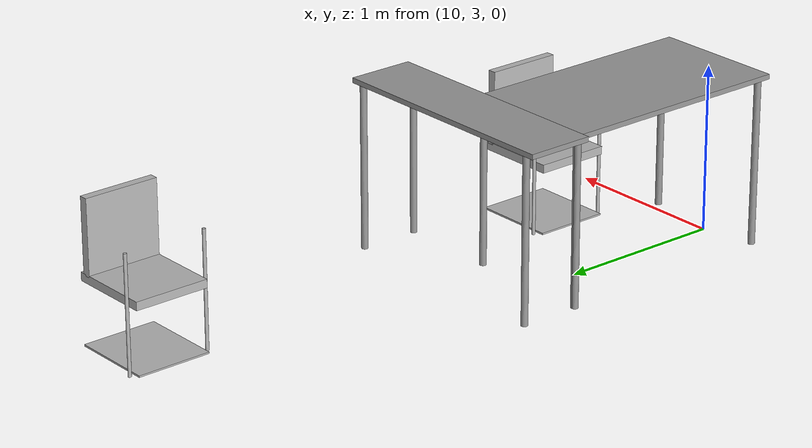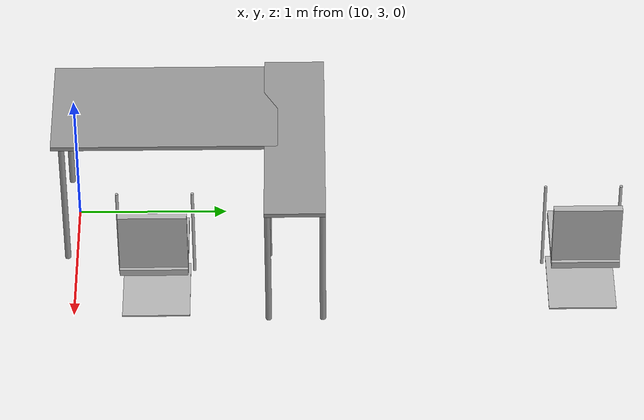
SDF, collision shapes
<sdf version="1.6">
 <model name="erica">
  <model name="h_chair">
   <link name="link_0">
    <inertial>
     <mass>1</mass>
     <inertia>
      <ixx>0.166667</ixx>
      <ixy>0</ixy>
      <ixz>0</ixz>
      <iyy>0.166667</iyy>
      <iyz>0</iyz>
      <izz>0.166667</izz>
     </inertia>
    </inertial>
    <visual name="visual">
     <geometry>
      <mesh><uri>model://erica/elements/h_chair/meshes/chair.dae</uri><scale>1 1 1</scale></mesh>
     </geometry>
    </visual>
    <collision name="collision_4">
     <pose>0 0 0.41 0 -0 0</pose>
     <geometry><box><size>0.5 0.45 0.05</size></box></geometry>
     <surface>
      <friction>
       <ode><mu>1</mu><mu2>1</mu2><fdir1>0 0 0</fdir1><slip1>0</slip1><slip2>0</slip2></ode>
       <torsional>
        <coefficient>1</coefficient>
        <patch_radius>0</patch_radius>
        <surface_radius>0</surface_radius>
        <use_patch_radius>1</use_patch_radius>
        <ode><slip>0</slip></ode>
       </torsional>
      </friction>
      <bounce><restitution_coefficient>0</restitution_coefficient><threshold>1e+06</threshold></bounce>
      <contact>
       <collide_without_contact>0</collide_without_contact>
       <collide_without_contact_bitmask>1</collide_without_contact_bitmask>
       <collide_bitmask>1</collide_bitmask>
       <ode>
        <soft_cfm>0</soft_cfm>
        <soft_erp>0.2</soft_erp>
        <kp>1e+13</kp>
        <kd>1</kd>
        <max_vel>0.01</max_vel>
        <min_depth>0</min_depth>
       </ode>
       <bullet>
        <split_impulse>1</split_impulse>
        <split_impulse_penetration_threshold>-0.01</split_impulse_penetration_threshold>
        <soft_cfm>0</soft_cfm>
        <soft_erp>0.2</soft_erp>
        <kp>1e+13</kp>
        <kd>1</kd>
       </bullet>
      </contact>
     </surface>
    </collision>
    <collision name="collision_3">
     <pose>0 0 0.01 0 -0 0</pose>
     <geometry><box><size>0.5 0.45 0.01</size></box></geometry>
     <surface>
      <friction>
       <ode><mu>1</mu><mu2>1</mu2><fdir1>0 0 0</fdir1><slip1>0</slip1><slip2>0</slip2></ode>
       <torsional>
        <coefficient>1</coefficient>
        <patch_radius>0</patch_radius>
        <surface_radius>0</surface_radius>
        <use_patch_radius>1</use_patch_radius>
        <ode><slip>0</slip></ode>
       </torsional>
      </friction>
      <bounce><restitution_coefficient>0</restitution_coefficient><threshold>1e+06</threshold></bounce>
      <contact>
       <collide_without_contact>0</collide_without_contact>
       <collide_without_contact_bitmask>1</collide_without_contact_bitmask>
       <collide_bitmask>1</collide_bitmask>
       <ode>
        <soft_cfm>0</soft_cfm>
        <soft_erp>0.2</soft_erp>
        <kp>1e+13</kp>
        <kd>1</kd>
        <max_vel>0.01</max_vel>
        <min_depth>0</min_depth>
       </ode>
       <bullet>
        <split_impulse>1</split_impulse>
        <split_impulse_penetration_threshold>-0.01</split_impulse_penetration_threshold>
        <soft_cfm>0</soft_cfm>
        <soft_erp>0.2</soft_erp>
        <kp>1e+13</kp>
        <kd>1</kd>
       </bullet>
      </contact>
     </surface>
    </collision>
    <collision name="collision_5">
     <pose>-0.2 0 0.65 0 -0 0</pose>
     <geometry><box><size>0.05 0.45 0.45</size></box></geometry>
     <surface>
      <friction>
       <ode><mu>1</mu><mu2>1</mu2><fdir1>0 0 0</fdir1><slip1>0</slip1><slip2>0</slip2></ode>
       <torsional>
        <coefficient>1</coefficient>
        <patch_radius>0</patch_radius>
        <surface_radius>0</surface_radius>
        <use_patch_radius>1</use_patch_radius>
        <ode><slip>0</slip></ode>
       </torsional>
      </friction>
      <bounce><restitution_coefficient>0</restitution_coefficient><threshold>1e+06</threshold></bounce>
      <contact>
       <collide_without_contact>0</collide_without_contact>
       <collide_without_contact_bitmask>1</collide_without_contact_bitmask>
       <collide_bitmask>1</collide_bitmask>
       <ode>
        <soft_cfm>0</soft_cfm>
        <soft_erp>0.2</soft_erp>
        <kp>1e+13</kp>
        <kd>1</kd>
        <max_vel>0.01</max_vel>
        <min_depth>0</min_depth>
       </ode>
       <bullet>
        <split_impulse>1</split_impulse>
        <split_impulse_penetration_threshold>-0.01</split_impulse_penetration_threshold>
        <soft_cfm>0</soft_cfm>
        <soft_erp>0.2</soft_erp>
        <kp>1e+13</kp>
        <kd>1</kd>
       </bullet>
      </contact>
     </surface>
    </collision>
    <collision name="collision_6">
     <pose>0.2 -0.25 0.35 0 -0 0</pose>
     <geometry><cylinder><radius>0.01</radius><length>0.7</length></cylinder></geometry>
     <surface>
      <friction>
       <ode><mu>1</mu><mu2>1</mu2><fdir1>0 0 0</fdir1><slip1>0</slip1><slip2>0</slip2></ode>
       <torsional>
        <coefficient>1</coefficient>
        <patch_radius>0</patch_radius>
        <surface_radius>0</surface_radius>
        <use_patch_radius>1</use_patch_radius>
        <ode><slip>0</slip></ode>
       </torsional>
      </friction>
      <bounce><restitution_coefficient>0</restitution_coefficient><threshold>1e+06</threshold></bounce>
      <contact>
       <collide_without_contact>0</collide_without_contact>
       <collide_without_contact_bitmask>1</collide_without_contact_bitmask>
       <collide_bitmask>1</collide_bitmask>
       <ode>
        <soft_cfm>0</soft_cfm>
        <soft_erp>0.2</soft_erp>
        <kp>1e+13</kp>
        <kd>1</kd>
        <max_vel>0.01</max_vel>
        <min_depth>0</min_depth>
       </ode>
       <bullet>
        <split_impulse>1</split_impulse>
        <split_impulse_penetration_threshold>-0.01</split_impulse_penetration_threshold>
        <soft_cfm>0</soft_cfm>
        <soft_erp>0.2</soft_erp>
        <kp>1e+13</kp>
        <kd>1</kd>
       </bullet>
      </contact>
     </surface>
    </collision>
    <collision name="collision_7">
     <pose>0.2 0.25 0.35 0 -0 0</pose>
     <geometry><cylinder><radius>0.01</radius><length>0.7</length></cylinder></geometry>
     <surface>
      <friction>
       <ode><mu>1</mu><mu2>1</mu2><fdir1>0 0 0</fdir1><slip1>0</slip1><slip2>0</slip2></ode>
       <torsional>
        <coefficient>1</coefficient>
        <patch_radius>0</patch_radius>
        <surface_radius>0</surface_radius>
        <use_patch_radius>1</use_patch_radius>
        <ode><slip>0</slip></ode>
       </torsional>
      </friction>
      <bounce><restitution_coefficient>0</restitution_coefficient><threshold>1e+06</threshold></bounce>
      <contact>
       <collide_without_contact>0</collide_without_contact>
       <collide_without_contact_bitmask>1</collide_without_contact_bitmask>
       <collide_bitmask>1</collide_bitmask>
       <ode>
        <soft_cfm>0</soft_cfm>
        <soft_erp>0.2</soft_erp>
        <kp>1e+13</kp>
        <kd>1</kd>
        <max_vel>0.01</max_vel>
        <min_depth>0</min_depth>
       </ode>
       <bullet>
        <split_impulse>1</split_impulse>
        <split_impulse_penetration_threshold>-0.01</split_impulse_penetration_threshold>
        <soft_cfm>0</soft_cfm>
        <soft_erp>0.2</soft_erp>
        <kp>1e+13</kp>
        <kd>1</kd>
       </bullet>
      </contact>
     </surface>
    </collision>
   </link>
   <static>1</static>
   <pose>10.725 6.38975 0 0 0 -3.13847</pose>
  </model>
  <model name="h_chair_clone">
   <link name="link_0">
    <inertial>
     <mass>1</mass>
     <inertia>
      <ixx>0.166667</ixx>
      <ixy>0</ixy>
      <ixz>0</ixz>
      <iyy>0.166667</iyy>
      <iyz>0</iyz>
      <izz>0.166667</izz>
     </inertia>
    </inertial>
    <visual name="visual">
     <geometry>
      <mesh><uri>model://erica/elements/h_chair/meshes/chair.dae</uri><scale>1 1 1</scale></mesh>
     </geometry>
    </visual>
    <collision name="collision_4">
     <pose>0 0 0.41 0 -0 0</pose>
     <geometry><box><size>0.5 0.45 0.05</size></box></geometry>
     <surface>
      <friction>
       <ode><mu>1</mu><mu2>1</mu2><fdir1>0 0 0</fdir1><slip1>0</slip1><slip2>0</slip2></ode>
       <torsional>
        <coefficient>1</coefficient>
        <patch_radius>0</patch_radius>
        <surface_radius>0</surface_radius>
        <use_patch_radius>1</use_patch_radius>
        <ode><slip>0</slip></ode>
       </torsional>
      </friction>
      <bounce><restitution_coefficient>0</restitution_coefficient><threshold>1e+06</threshold></bounce>
      <contact>
       <collide_without_contact>0</collide_without_contact>
       <collide_without_contact_bitmask>1</collide_without_contact_bitmask>
       <collide_bitmask>1</collide_bitmask>
       <ode>
        <soft_cfm>0</soft_cfm>
        <soft_erp>0.2</soft_erp>
        <kp>1e+13</kp>
        <kd>1</kd>
        <max_vel>0.01</max_vel>
        <min_depth>0</min_depth>
       </ode>
       <bullet>
        <split_impulse>1</split_impulse>
        <split_impulse_penetration_threshold>-0.01</split_impulse_penetration_threshold>
        <soft_cfm>0</soft_cfm>
        <soft_erp>0.2</soft_erp>
        <kp>1e+13</kp>
        <kd>1</kd>
       </bullet>
      </contact>
     </surface>
    </collision>
    <collision name="collision_3">
     <pose>0 0 0.01 0 -0 0</pose>
     <geometry><box><size>0.5 0.45 0.01</size></box></geometry>
     <surface>
      <friction>
       <ode><mu>1</mu><mu2>1</mu2><fdir1>0 0 0</fdir1><slip1>0</slip1><slip2>0</slip2></ode>
       <torsional>
        <coefficient>1</coefficient>
        <patch_radius>0</patch_radius>
        <surface_radius>0</surface_radius>
        <use_patch_radius>1</use_patch_radius>
        <ode><slip>0</slip></ode>
       </torsional>
      </friction>
      <bounce><restitution_coefficient>0</restitution_coefficient><threshold>1e+06</threshold></bounce>
      <contact>
       <collide_without_contact>0</collide_without_contact>
       <collide_without_contact_bitmask>1</collide_without_contact_bitmask>
       <collide_bitmask>1</collide_bitmask>
       <ode>
        <soft_cfm>0</soft_cfm>
        <soft_erp>0.2</soft_erp>
        <kp>1e+13</kp>
        <kd>1</kd>
        <max_vel>0.01</max_vel>
        <min_depth>0</min_depth>
       </ode>
       <bullet>
        <split_impulse>1</split_impulse>
        <split_impulse_penetration_threshold>-0.01</split_impulse_penetration_threshold>
        <soft_cfm>0</soft_cfm>
        <soft_erp>0.2</soft_erp>
        <kp>1e+13</kp>
        <kd>1</kd>
       </bullet>
      </contact>
     </surface>
    </collision>
    <collision name="collision_5">
     <pose>-0.2 0 0.65 0 -0 0</pose>
     <geometry><box><size>0.05 0.45 0.45</size></box></geometry>
     <surface>
      <friction>
       <ode><mu>1</mu><mu2>1</mu2><fdir1>0 0 0</fdir1><slip1>0</slip1><slip2>0</slip2></ode>
       <torsional>
        <coefficient>1</coefficient>
        <patch_radius>0</patch_radius>
        <surface_radius>0</surface_radius>
        <use_patch_radius>1</use_patch_radius>
        <ode><slip>0</slip></ode>
       </torsional>
      </friction>
      <bounce><restitution_coefficient>0</restitution_coefficient><threshold>1e+06</threshold></bounce>
      <contact>
       <collide_without_contact>0</collide_without_contact>
       <collide_without_contact_bitmask>1</collide_without_contact_bitmask>
       <collide_bitmask>1</collide_bitmask>
       <ode>
        <soft_cfm>0</soft_cfm>
        <soft_erp>0.2</soft_erp>
        <kp>1e+13</kp>
        <kd>1</kd>
        <max_vel>0.01</max_vel>
        <min_depth>0</min_depth>
       </ode>
       <bullet>
        <split_impulse>1</split_impulse>
        <split_impulse_penetration_threshold>-0.01</split_impulse_penetration_threshold>
        <soft_cfm>0</soft_cfm>
        <soft_erp>0.2</soft_erp>
        <kp>1e+13</kp>
        <kd>1</kd>
       </bullet>
      </contact>
     </surface>
    </collision>
    <collision name="collision_6">
     <pose>0.2 -0.25 0.35 0 -0 0</pose>
     <geometry><cylinder><radius>0.01</radius><length>0.7</length></cylinder></geometry>
     <surface>
      <friction>
       <ode><mu>1</mu><mu2>1</mu2><fdir1>0 0 0</fdir1><slip1>0</slip1><slip2>0</slip2></ode>
       <torsional>
        <coefficient>1</coefficient>
        <patch_radius>0</patch_radius>
        <surface_radius>0</surface_radius>
        <use_patch_radius>1</use_patch_radius>
        <ode><slip>0</slip></ode>
       </torsional>
      </friction>
      <bounce><restitution_coefficient>0</restitution_coefficient><threshold>1e+06</threshold></bounce>
      <contact>
       <collide_without_contact>0</collide_without_contact>
       <collide_without_contact_bitmask>1</collide_without_contact_bitmask>
       <collide_bitmask>1</collide_bitmask>
       <ode>
        <soft_cfm>0</soft_cfm>
        <soft_erp>0.2</soft_erp>
        <kp>1e+13</kp>
        <kd>1</kd>
        <max_vel>0.01</max_vel>
        <min_depth>0</min_depth>
       </ode>
       <bullet>
        <split_impulse>1</split_impulse>
        <split_impulse_penetration_threshold>-0.01</split_impulse_penetration_threshold>
        <soft_cfm>0</soft_cfm>
        <soft_erp>0.2</soft_erp>
        <kp>1e+13</kp>
        <kd>1</kd>
       </bullet>
      </contact>
     </surface>
    </collision>
    <collision name="collision_7">
     <pose>0.2 0.25 0.35 0 -0 0</pose>
     <geometry><cylinder><radius>0.01</radius><length>0.7</length></cylinder></geometry>
     <surface>
      <friction>
       <ode><mu>1</mu><mu2>1</mu2><fdir1>0 0 0</fdir1><slip1>0</slip1><slip2>0</slip2></ode>
       <torsional>
        <coefficient>1</coefficient>
        <patch_radius>0</patch_radius>
        <surface_radius>0</surface_radius>
        <use_patch_radius>1</use_patch_radius>
        <ode><slip>0</slip></ode>
       </torsional>
      </friction>
      <bounce><restitution_coefficient>0</restitution_coefficient><threshold>1e+06</threshold></bounce>
      <contact>
       <collide_without_contact>0</collide_without_contact>
       <collide_without_contact_bitmask>1</collide_without_contact_bitmask>
       <collide_bitmask>1</collide_bitmask>
       <ode>
        <soft_cfm>0</soft_cfm>
        <soft_erp>0.2</soft_erp>
        <kp>1e+13</kp>
        <kd>1</kd>
        <max_vel>0.01</max_vel>
        <min_depth>0</min_depth>
       </ode>
       <bullet>
        <split_impulse>1</split_impulse>
        <split_impulse_penetration_threshold>-0.01</split_impulse_penetration_threshold>
        <soft_cfm>0</soft_cfm>
        <soft_erp>0.2</soft_erp>
        <kp>1e+13</kp>
        <kd>1</kd>
       </bullet>
      </contact>
     </surface>
    </collision>
   </link>
   <static>1</static>
   <pose>10.7735 3.54523 0 0 0 -3.13847</pose>
  </model>
  <model name="h_table3">
   <link name="link">
    <inertial>
     <inertia><ixx>1</ixx><ixy>0</ixy><ixz>0</ixz><iyy>1</iyy><iyz>0</iyz><izz>1</izz></inertia>
     <mass>1</mass>
    </inertial>
    <visual name="front_left_leg">
     <pose>0.68 0.38 0.5 0 -0 0</pose>
     <geometry><cylinder><radius>0.02</radius><length>1</length></cylinder></geometry>
     <material>
      <script><uri>file://media/materials/scripts/gazebo.material</uri><name>Gazebo/Grey</name></script>
      <ambient>0.3 0.3 0.3 1</ambient>
      <diffuse>0.7 0.7 0.7 1</diffuse>
      <specular>0.01 0.01 0.01 1</specular>
      <emissive>0 0 0 1</emissive>
     </material>
    </visual>
    <visual name="visual1">
     <pose>0 0 1 0 -0 0</pose>
     <geometry><box><size>1.4 0.8 0.04</size></box></geometry>
     <material>
      <script><uri>file://media/materials/scripts/gazebo.material</uri><name>Gazebo/Wood</name></script>
      <ambient>1 1 1 1</ambient>
      <diffuse>1 1 1 1</diffuse>
      <specular>0.2 0.2 0.2 1</specular>
      <emissive>0 0 0 1</emissive>
     </material>
    </visual>
    <visual name="back_left_leg">
     <pose>-0.68 0.38 0.5 0 -0 0</pose>
     <geometry><cylinder><radius>0.02</radius><length>1</length></cylinder></geometry>
     <material>
      <script><uri>file://media/materials/scripts/gazebo.material</uri><name>Gazebo/Grey</name></script>
      <ambient>0.3 0.3 0.3 1</ambient>
      <diffuse>0.7 0.7 0.7 1</diffuse>
      <specular>0.01 0.01 0.01 1</specular>
      <emissive>0 0 0 1</emissive>
     </material>
    </visual>
    <visual name="back_right_leg">
     <pose>-0.68 -0.38 0.5 0 -0 0</pose>
     <geometry><cylinder><radius>0.02</radius><length>1</length></cylinder></geometry>
     <material>
      <script><uri>file://media/materials/scripts/gazebo.material</uri><name>Gazebo/Grey</name></script>
      <ambient>0.3 0.3 0.3 1</ambient>
      <diffuse>0.7 0.7 0.7 1</diffuse>
      <specular>0.01 0.01 0.01 1</specular>
      <emissive>0 0 0 1</emissive>
     </material>
    </visual>
    <visual name="front_right_leg">
     <pose>0.68 -0.38 0.5 0 -0 0</pose>
     <geometry><cylinder><radius>0.02</radius><length>1</length></cylinder></geometry>
     <material>
      <script><uri>file://media/materials/scripts/gazebo.material</uri><name>Gazebo/Grey</name></script>
      <ambient>0.3 0.3 0.3 1</ambient>
      <diffuse>0.7 0.7 0.7 1</diffuse>
      <specular>0.01 0.01 0.01 1</specular>
      <emissive>0 0 0 1</emissive>
     </material>
    </visual>
    <collision name="front_left_leg">
     <pose>0.68 0.38 0.5 0 -0 0</pose>
     <geometry><cylinder><radius>0.02</radius><length>1</length></cylinder></geometry>
     <surface>
      <friction>
       <ode><mu>1</mu><mu2>1</mu2><fdir1>0 0 0</fdir1><slip1>0</slip1><slip2>0</slip2></ode>
       <torsional>
        <coefficient>1</coefficient>
        <patch_radius>0</patch_radius>
        <surface_radius>0</surface_radius>
        <use_patch_radius>1</use_patch_radius>
        <ode><slip>0</slip></ode>
       </torsional>
      </friction>
      <bounce><restitution_coefficient>0</restitution_coefficient><threshold>1e+06</threshold></bounce>
      <contact>
       <collide_without_contact>0</collide_without_contact>
       <collide_without_contact_bitmask>1</collide_without_contact_bitmask>
       <collide_bitmask>1</collide_bitmask>
       <ode>
        <soft_cfm>0</soft_cfm>
        <soft_erp>0.2</soft_erp>
        <kp>1e+13</kp>
        <kd>1</kd>
        <max_vel>0.01</max_vel>
        <min_depth>0</min_depth>
       </ode>
       <bullet>
        <split_impulse>1</split_impulse>
        <split_impulse_penetration_threshold>-0.01</split_impulse_penetration_threshold>
        <soft_cfm>0</soft_cfm>
        <soft_erp>0.2</soft_erp>
        <kp>1e+13</kp>
        <kd>1</kd>
       </bullet>
      </contact>
     </surface>
    </collision>
    <collision name="front_right_leg">
     <pose>0.68 -0.38 0.5 0 -0 0</pose>
     <geometry><cylinder><radius>0.02</radius><length>1</length></cylinder></geometry>
     <surface>
      <friction>
       <ode><mu>1</mu><mu2>1</mu2><fdir1>0 0 0</fdir1><slip1>0</slip1><slip2>0</slip2></ode>
       <torsional>
        <coefficient>1</coefficient>
        <patch_radius>0</patch_radius>
        <surface_radius>0</surface_radius>
        <use_patch_radius>1</use_patch_radius>
        <ode><slip>0</slip></ode>
       </torsional>
      </friction>
      <bounce><restitution_coefficient>0</restitution_coefficient><threshold>1e+06</threshold></bounce>
      <contact>
       <collide_without_contact>0</collide_without_contact>
       <collide_without_contact_bitmask>1</collide_without_contact_bitmask>
       <collide_bitmask>1</collide_bitmask>
       <ode>
        <soft_cfm>0</soft_cfm>
        <soft_erp>0.2</soft_erp>
        <kp>1e+13</kp>
        <kd>1</kd>
        <max_vel>0.01</max_vel>
        <min_depth>0</min_depth>
       </ode>
       <bullet>
        <split_impulse>1</split_impulse>
        <split_impulse_penetration_threshold>-0.01</split_impulse_penetration_threshold>
        <soft_cfm>0</soft_cfm>
        <soft_erp>0.2</soft_erp>
        <kp>1e+13</kp>
        <kd>1</kd>
       </bullet>
      </contact>
     </surface>
    </collision>
    <collision name="surface">
     <pose>0 0 1 0 -0 0</pose>
     <geometry><box><size>1.5 0.8 0.03</size></box></geometry>
     <surface>
      <friction>
       <ode><mu>0.6</mu><mu2>0.6</mu2><fdir1>0 0 0</fdir1><slip1>0</slip1><slip2>0</slip2></ode>
       <torsional>
        <coefficient>1</coefficient>
        <patch_radius>0</patch_radius>
        <surface_radius>0</surface_radius>
        <use_patch_radius>1</use_patch_radius>
        <ode><slip>0</slip></ode>
       </torsional>
      </friction>
      <bounce><restitution_coefficient>0</restitution_coefficient><threshold>1e+06</threshold></bounce>
      <contact>
       <collide_without_contact>0</collide_without_contact>
       <collide_without_contact_bitmask>1</collide_without_contact_bitmask>
       <collide_bitmask>1</collide_bitmask>
       <ode>
        <soft_cfm>0</soft_cfm>
        <soft_erp>0.2</soft_erp>
        <kp>1e+13</kp>
        <kd>1</kd>
        <max_vel>0.01</max_vel>
        <min_depth>0</min_depth>
       </ode>
       <bullet>
        <split_impulse>1</split_impulse>
        <split_impulse_penetration_threshold>-0.01</split_impulse_penetration_threshold>
        <soft_cfm>0</soft_cfm>
        <soft_erp>0.2</soft_erp>
        <kp>1e+13</kp>
        <kd>1</kd>
       </bullet>
      </contact>
     </surface>
    </collision>
    <collision name="back_right_leg">
     <pose>-0.68 -0.38 0.5 0 -0 0</pose>
     <geometry><cylinder><radius>0.02</radius><length>1</length></cylinder></geometry>
     <surface>
      <friction>
       <ode><mu>1</mu><mu2>1</mu2><fdir1>0 0 0</fdir1><slip1>0</slip1><slip2>0</slip2></ode>
       <torsional>
        <coefficient>1</coefficient>
        <patch_radius>0</patch_radius>
        <surface_radius>0</surface_radius>
        <use_patch_radius>1</use_patch_radius>
        <ode><slip>0</slip></ode>
       </torsional>
      </friction>
      <bounce><restitution_coefficient>0</restitution_coefficient><threshold>1e+06</threshold></bounce>
      <contact>
       <collide_without_contact>0</collide_without_contact>
       <collide_without_contact_bitmask>1</collide_without_contact_bitmask>
       <collide_bitmask>1</collide_bitmask>
       <ode>
        <soft_cfm>0</soft_cfm>
        <soft_erp>0.2</soft_erp>
        <kp>1e+13</kp>
        <kd>1</kd>
        <max_vel>0.01</max_vel>
        <min_depth>0</min_depth>
       </ode>
       <bullet>
        <split_impulse>1</split_impulse>
        <split_impulse_penetration_threshold>-0.01</split_impulse_penetration_threshold>
        <soft_cfm>0</soft_cfm>
        <soft_erp>0.2</soft_erp>
        <kp>1e+13</kp>
        <kd>1</kd>
       </bullet>
      </contact>
     </surface>
    </collision>
    <collision name="back_left_leg">
     <pose>-0.68 0.38 0.5 0 -0 0</pose>
     <geometry><cylinder><radius>0.02</radius><length>1</length></cylinder></geometry>
     <surface>
      <friction>
       <ode><mu>1</mu><mu2>1</mu2><fdir1>0 0 0</fdir1><slip1>0</slip1><slip2>0</slip2></ode>
       <torsional>
        <coefficient>1</coefficient>
        <patch_radius>0</patch_radius>
        <surface_radius>0</surface_radius>
        <use_patch_radius>1</use_patch_radius>
        <ode><slip>0</slip></ode>
       </torsional>
      </friction>
      <bounce><restitution_coefficient>0</restitution_coefficient><threshold>1e+06</threshold></bounce>
      <contact>
       <collide_without_contact>0</collide_without_contact>
       <collide_without_contact_bitmask>1</collide_without_contact_bitmask>
       <collide_bitmask>1</collide_bitmask>
       <ode>
        <soft_cfm>0</soft_cfm>
        <soft_erp>0.2</soft_erp>
        <kp>1e+13</kp>
        <kd>1</kd>
        <max_vel>0.01</max_vel>
        <min_depth>0</min_depth>
       </ode>
       <bullet>
        <split_impulse>1</split_impulse>
        <split_impulse_penetration_threshold>-0.01</split_impulse_penetration_threshold>
        <soft_cfm>0</soft_cfm>
        <soft_erp>0.2</soft_erp>
        <kp>1e+13</kp>
        <kd>1</kd>
       </bullet>
      </contact>
     </surface>
    </collision>
   </link>
   <link name="link_clone">
    <pose>-0.859488 0.306544 0 0 -0 1.57</pose>
    <inertial>
     <inertia><ixx>1</ixx><ixy>0</ixy><ixz>0</ixz><iyy>1</iyy><iyz>0</iyz><izz>1</izz></inertia>
     <mass>1</mass>
    </inertial>
    <visual name="front_right_leg">
     <pose>0.68 -0.18 0.5 0 -0 0</pose>
     <geometry><cylinder><radius>0.02</radius><length>1</length></cylinder></geometry>
     <material>
      <script><uri>file://media/materials/scripts/gazebo.material</uri><name>Gazebo/Grey</name></script>
      <ambient>0.3 0.3 0.3 1</ambient>
      <diffuse>0.7 0.7 0.7 1</diffuse>
      <specular>0.01 0.01 0.01 1</specular>
      <emissive>0 0 0 1</emissive>
      <shader type="vertex"><normal_map>__default__</normal_map></shader>
     </material>
    </visual>
    <visual name="back_right_leg">
     <pose>-0.68 -0.18 0.5 0 -0 0</pose>
     <geometry><cylinder><radius>0.02</radius><length>1</length></cylinder></geometry>
     <material>
      <script><uri>file://media/materials/scripts/gazebo.material</uri><name>Gazebo/Grey</name></script>
      <ambient>0.3 0.3 0.3 1</ambient>
      <diffuse>0.7 0.7 0.7 1</diffuse>
      <specular>0.01 0.01 0.01 1</specular>
      <emissive>0 0 0 1</emissive>
      <shader type="vertex"><normal_map>__default__</normal_map></shader>
     </material>
    </visual>
    <visual name="visual1">
     <pose>0 0 1 0 -0 0</pose>
     <geometry><box><size>1.4 0.4 0.04</size></box></geometry>
     <material>
      <script><uri>file://media/materials/scripts/gazebo.material</uri><name>Gazebo/Wood</name></script>
      <ambient>1 1 1 1</ambient>
      <diffuse>1 1 1 1</diffuse>
      <specular>0.2 0.2 0.2 1</specular>
      <emissive>0 0 0 1</emissive>
      <shader type="vertex"><normal_map>__default__</normal_map></shader>
     </material>
    </visual>
    <visual name="front_left_leg">
     <pose>0.68 0.18 0.5 0 -0 0</pose>
     <geometry><cylinder><radius>0.02</radius><length>1</length></cylinder></geometry>
     <material>
      <script><uri>file://media/materials/scripts/gazebo.material</uri><name>Gazebo/Grey</name></script>
      <ambient>0.3 0.3 0.3 1</ambient>
      <diffuse>0.7 0.7 0.7 1</diffuse>
      <specular>0.01 0.01 0.01 1</specular>
      <emissive>0 0 0 1</emissive>
      <shader type="vertex"><normal_map>__default__</normal_map></shader>
     </material>
    </visual>
    <visual name="back_left_leg">
     <pose>-0.68 0.18 0.5 0 -0 0</pose>
     <geometry><cylinder><radius>0.02</radius><length>1</length></cylinder></geometry>
     <material>
      <script><uri>file://media/materials/scripts/gazebo.material</uri><name>Gazebo/Grey</name></script>
      <ambient>0.3 0.3 0.3 1</ambient>
      <diffuse>0.7 0.7 0.7 1</diffuse>
      <specular>0.01 0.01 0.01 1</specular>
      <emissive>0 0 0 1</emissive>
      <shader type="vertex"><normal_map>__default__</normal_map></shader>
     </material>
    </visual>
    <collision name="back_right_leg_0">
     <pose>-0.68 -0.18 0.5 0 -0 0</pose>
     <geometry><cylinder><radius>0.02</radius><length>1</length></cylinder></geometry>
     <surface>
      <friction>
       <ode><mu>1</mu><mu2>1</mu2><fdir1>0 0 0</fdir1><slip1>0</slip1><slip2>0</slip2></ode>
       <torsional>
        <coefficient>1</coefficient>
        <patch_radius>0</patch_radius>
        <surface_radius>0</surface_radius>
        <use_patch_radius>1</use_patch_radius>
        <ode><slip>0</slip></ode>
       </torsional>
      </friction>
      <bounce><restitution_coefficient>0</restitution_coefficient><threshold>1e+06</threshold></bounce>
      <contact>
       <collide_without_contact>0</collide_without_contact>
       <collide_without_contact_bitmask>1</collide_without_contact_bitmask>
       <collide_bitmask>1</collide_bitmask>
       <ode>
        <soft_cfm>0</soft_cfm>
        <soft_erp>0.2</soft_erp>
        <kp>1e+13</kp>
        <kd>1</kd>
        <max_vel>0.01</max_vel>
        <min_depth>0</min_depth>
       </ode>
       <bullet>
        <split_impulse>1</split_impulse>
        <split_impulse_penetration_threshold>-0.01</split_impulse_penetration_threshold>
        <soft_cfm>0</soft_cfm>
        <soft_erp>0.2</soft_erp>
        <kp>1e+13</kp>
        <kd>1</kd>
       </bullet>
      </contact>
     </surface>
    </collision>
    <collision name="front_left_leg_0">
     <pose>0.68 0.18 0.5 0 -0 0</pose>
     <geometry><cylinder><radius>0.02</radius><length>1</length></cylinder></geometry>
     <surface>
      <friction>
       <ode><mu>1</mu><mu2>1</mu2><fdir1>0 0 0</fdir1><slip1>0</slip1><slip2>0</slip2></ode>
       <torsional>
        <coefficient>1</coefficient>
        <patch_radius>0</patch_radius>
        <surface_radius>0</surface_radius>
        <use_patch_radius>1</use_patch_radius>
        <ode><slip>0</slip></ode>
       </torsional>
      </friction>
      <bounce><restitution_coefficient>0</restitution_coefficient><threshold>1e+06</threshold></bounce>
      <contact>
       <collide_without_contact>0</collide_without_contact>
       <collide_without_contact_bitmask>1</collide_without_contact_bitmask>
       <collide_bitmask>1</collide_bitmask>
       <ode>
        <soft_cfm>0</soft_cfm>
        <soft_erp>0.2</soft_erp>
        <kp>1e+13</kp>
        <kd>1</kd>
        <max_vel>0.01</max_vel>
        <min_depth>0</min_depth>
       </ode>
       <bullet>
        <split_impulse>1</split_impulse>
        <split_impulse_penetration_threshold>-0.01</split_impulse_penetration_threshold>
        <soft_cfm>0</soft_cfm>
        <soft_erp>0.2</soft_erp>
        <kp>1e+13</kp>
        <kd>1</kd>
       </bullet>
      </contact>
     </surface>
    </collision>
    <collision name="back_left_leg_0">
     <pose>-0.68 0.18 0.5 0 -0 0</pose>
     <geometry><cylinder><radius>0.02</radius><length>1</length></cylinder></geometry>
     <surface>
      <friction>
       <ode><mu>1</mu><mu2>1</mu2><fdir1>0 0 0</fdir1><slip1>0</slip1><slip2>0</slip2></ode>
       <torsional>
        <coefficient>1</coefficient>
        <patch_radius>0</patch_radius>
        <surface_radius>0</surface_radius>
        <use_patch_radius>1</use_patch_radius>
        <ode><slip>0</slip></ode>
       </torsional>
      </friction>
      <bounce><restitution_coefficient>0</restitution_coefficient><threshold>1e+06</threshold></bounce>
      <contact>
       <collide_without_contact>0</collide_without_contact>
       <collide_without_contact_bitmask>1</collide_without_contact_bitmask>
       <collide_bitmask>1</collide_bitmask>
       <ode>
        <soft_cfm>0</soft_cfm>
        <soft_erp>0.2</soft_erp>
        <kp>1e+13</kp>
        <kd>1</kd>
        <max_vel>0.01</max_vel>
        <min_depth>0</min_depth>
       </ode>
       <bullet>
        <split_impulse>1</split_impulse>
        <split_impulse_penetration_threshold>-0.01</split_impulse_penetration_threshold>
        <soft_cfm>0</soft_cfm>
        <soft_erp>0.2</soft_erp>
        <kp>1e+13</kp>
        <kd>1</kd>
       </bullet>
      </contact>
     </surface>
    </collision>
    <collision name="front_right_leg_0">
     <pose>0.68 -0.18 0.5 0 -0 0</pose>
     <geometry><cylinder><radius>0.02</radius><length>1</length></cylinder></geometry>
     <surface>
      <friction>
       <ode><mu>1</mu><mu2>1</mu2><fdir1>0 0 0</fdir1><slip1>0</slip1><slip2>0</slip2></ode>
       <torsional>
        <coefficient>1</coefficient>
        <patch_radius>0</patch_radius>
        <surface_radius>0</surface_radius>
        <use_patch_radius>1</use_patch_radius>
        <ode><slip>0</slip></ode>
       </torsional>
      </friction>
      <bounce><restitution_coefficient>0</restitution_coefficient><threshold>1e+06</threshold></bounce>
      <contact>
       <collide_without_contact>0</collide_without_contact>
       <collide_without_contact_bitmask>1</collide_without_contact_bitmask>
       <collide_bitmask>1</collide_bitmask>
       <ode>
        <soft_cfm>0</soft_cfm>
        <soft_erp>0.2</soft_erp>
        <kp>1e+13</kp>
        <kd>1</kd>
        <max_vel>0.01</max_vel>
        <min_depth>0</min_depth>
       </ode>
       <bullet>
        <split_impulse>1</split_impulse>
        <split_impulse_penetration_threshold>-0.01</split_impulse_penetration_threshold>
        <soft_cfm>0</soft_cfm>
        <soft_erp>0.2</soft_erp>
        <kp>1e+13</kp>
        <kd>1</kd>
       </bullet>
      </contact>
     </surface>
    </collision>
    <collision name="surface">
     <pose>0 0 1 0 -0 0</pose>
     <geometry><box><size>1.5 0.4 0.03</size></box></geometry>
     <surface>
      <friction>
       <ode><mu>1</mu><mu2>1</mu2><fdir1>0 0 0</fdir1><slip1>0</slip1><slip2>0</slip2></ode>
       <torsional>
        <coefficient>1</coefficient>
        <patch_radius>0</patch_radius>
        <surface_radius>0</surface_radius>
        <use_patch_radius>1</use_patch_radius>
        <ode><slip>0</slip></ode>
       </torsional>
      </friction>
      <bounce><restitution_coefficient>0</restitution_coefficient><threshold>1e+06</threshold></bounce>
      <contact>
       <collide_without_contact>0</collide_without_contact>
       <collide_without_contact_bitmask>1</collide_without_contact_bitmask>
       <collide_bitmask>1</collide_bitmask>
       <ode>
        <soft_cfm>0</soft_cfm>
        <soft_erp>0.2</soft_erp>
        <kp>1e+13</kp>
        <kd>1</kd>
        <max_vel>0.01</max_vel>
        <min_depth>0</min_depth>
       </ode>
       <bullet>
        <split_impulse>1</split_impulse>
        <split_impulse_penetration_threshold>-0.01</split_impulse_penetration_threshold>
        <soft_cfm>0</soft_cfm>
        <soft_erp>0.2</soft_erp>
        <kp>1e+13</kp>
        <kd>1</kd>
       </bullet>
      </contact>
     </surface>
    </collision>
   </link>
   <static>1</static>
   <pose>10.0573 3.61404 0 0 0 -1.5669</pose>
  </model>
  <static>1</static>
 </model>
</sdf>
